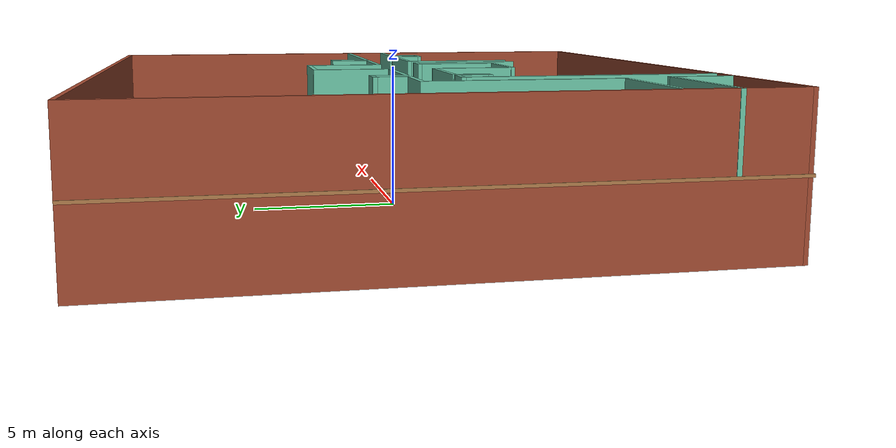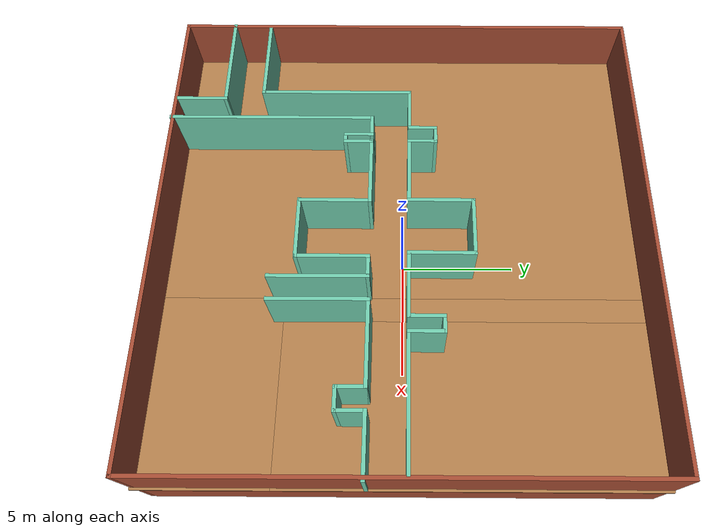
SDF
<?xml version='1.0'?>
<sdf version='1.7'>
  <model name='Test2_gazebo_map'>
    <pose>0.012465 0.035587 0 0 -0 0</pose>
    <link name='Floor_4'>
      <pose>-0 -0 2.5 0 -0 0</pose>
      <visual name='Floor_4_Visual_0'>
        <pose>-3.78854 0 0.05 0 -0 0</pose>
        <geometry>
          <box>
            <size>12.5373 20.0583 0.1</size>
          </box>
        </geometry>
        <material>
          <script>
            <uri>file://media/materials/scripts/gazebo.material</uri>
            <name>Gazebo/Wood</name>
          </script>
          <ambient>1 1 1 1</ambient>
        </material>
        <meta>
          <layer>1</layer>
        </meta>
      </visual>
      <collision name='Floor_4_Collision_0'>
        <geometry>
          <box>
            <size>12.5373 20.0583 0.1</size>
          </box>
        </geometry>
        <pose>-3.78854 0 0.05 0 -0 0</pose>
      </collision>
      <visual name='Floor_4_Visual_1'>
        <pose>6.26864 -7.44145 0.05 0 -0 0</pose>
        <geometry>
          <box>
            <size>7.57707 5.17536 0.1</size>
          </box>
        </geometry>
        <material>
          <script>
            <uri>file://media/materials/scripts/gazebo.material</uri>
            <name>Gazebo/Wood</name>
          </script>
          <ambient>1 1 1 1</ambient>
        </material>
        <meta>
          <layer>1</layer>
        </meta>
      </visual>
      <collision name='Floor_4_Collision_1'>
        <geometry>
          <box>
            <size>7.57707 5.17536 0.1</size>
          </box>
        </geometry>
        <pose>6.26864 -7.44145 0.05 0 -0 0</pose>
      </collision>
      <visual name='Floor_4_Visual_2'>
        <pose>6.76864 2.58768 0.05 0 -0 0</pose>
        <geometry>
          <box>
            <size>6.57707 14.8829 0.1</size>
          </box>
        </geometry>
        <material>
          <script>
            <uri>file://media/materials/scripts/gazebo.material</uri>
            <name>Gazebo/Wood</name>
          </script>
          <ambient>1 1 1 1</ambient>
        </material>
        <meta>
          <layer>1</layer>
        </meta>
      </visual>
      <collision name='Floor_4_Collision_2'>
        <geometry>
          <box>
            <size>6.57707 14.8829 0.1</size>
          </box>
        </geometry>
        <pose>6.76864 2.58768 0.05 0 -0 0</pose>
      </collision>
      <visual name='Floor_4_Visual_3'>
        <pose>2.98011 4.33768 0.05 0 -0 0</pose>
        <geometry>
          <box>
            <size>1 11.3829 0.1</size>
          </box>
        </geometry>
        <material>
          <script>
            <uri>file://media/materials/scripts/gazebo.material</uri>
            <name>Gazebo/Wood</name>
          </script>
          <ambient>1 1 1 1</ambient>
        </material>
        <meta>
          <layer>1</layer>
        </meta>
      </visual>
      <collision name='Floor_4_Collision_3'>
        <geometry>
          <box>
            <size>1 11.3829 0.1</size>
          </box>
        </geometry>
        <pose>2.98011 4.33768 0.05 0 -0 0</pose>
      </collision>
    </link>
    <link name='Stairs_2'>
      <visual name='Stairs_2_Visual_0'>
        <pose>2.98011 -4.7371 0.083333 0 -0 -3.14159</pose>
        <geometry>
          <box>
            <size>1 0.233333 0.166667</size>
          </box>
        </geometry>
        <material>
          <script>
            <uri>file://media/materials/scripts/gazebo.material</uri>
            <name>Gazebo/Grey</name>
          </script>
          <ambient>1 1 1 1</ambient>
        </material>
        <meta>
          <layer>0</layer>
        </meta>
      </visual>
      <collision name='Stairs_2_Collision_0'>
        <geometry>
          <box>
            <size>1 0.233333 0.166667</size>
          </box>
        </geometry>
        <pose>2.98011 -4.7371 0.083333 0 -0 -3.14159</pose>
      </collision>
      <visual name='Stairs_2_Visual_1'>
        <pose>2.98011 -4.50377 0.25 0 -0 -3.14159</pose>
        <geometry>
          <box>
            <size>1 0.233333 0.166667</size>
          </box>
        </geometry>
        <material>
          <script>
            <uri>file://media/materials/scripts/gazebo.material</uri>
            <name>Gazebo/Grey</name>
          </script>
          <ambient>1 1 1 1</ambient>
        </material>
        <meta>
          <layer>0</layer>
        </meta>
      </visual>
      <collision name='Stairs_2_Collision_1'>
        <geometry>
          <box>
            <size>1 0.233333 0.166667</size>
          </box>
        </geometry>
        <pose>2.98011 -4.50377 0.25 0 -0 -3.14159</pose>
      </collision>
      <visual name='Stairs_2_Visual_2'>
        <pose>2.98011 -4.27044 0.416667 0 -0 -3.14159</pose>
        <geometry>
          <box>
            <size>1 0.233333 0.166667</size>
          </box>
        </geometry>
        <material>
          <script>
            <uri>file://media/materials/scripts/gazebo.material</uri>
            <name>Gazebo/Grey</name>
          </script>
          <ambient>1 1 1 1</ambient>
        </material>
        <meta>
          <layer>0</layer>
        </meta>
      </visual>
      <collision name='Stairs_2_Collision_2'>
        <geometry>
          <box>
            <size>1 0.233333 0.166667</size>
          </box>
        </geometry>
        <pose>2.98011 -4.27044 0.416667 0 -0 -3.14159</pose>
      </collision>
      <visual name='Stairs_2_Visual_3'>
        <pose>2.98011 -4.0371 0.583333 0 -0 -3.14159</pose>
        <geometry>
          <box>
            <size>1 0.233333 0.166667</size>
          </box>
        </geometry>
        <material>
          <script>
            <uri>file://media/materials/scripts/gazebo.material</uri>
            <name>Gazebo/Grey</name>
          </script>
          <ambient>1 1 1 1</ambient>
        </material>
        <meta>
          <layer>0</layer>
        </meta>
      </visual>
      <collision name='Stairs_2_Collision_3'>
        <geometry>
          <box>
            <size>1 0.233333 0.166667</size>
          </box>
        </geometry>
        <pose>2.98011 -4.0371 0.583333 0 -0 -3.14159</pose>
      </collision>
      <visual name='Stairs_2_Visual_4'>
        <pose>2.98011 -3.80377 0.75 0 -0 -3.14159</pose>
        <geometry>
          <box>
            <size>1 0.233333 0.166667</size>
          </box>
        </geometry>
        <material>
          <script>
            <uri>file://media/materials/scripts/gazebo.material</uri>
            <name>Gazebo/Grey</name>
          </script>
          <ambient>1 1 1 1</ambient>
        </material>
        <meta>
          <layer>0</layer>
        </meta>
      </visual>
      <collision name='Stairs_2_Collision_4'>
        <geometry>
          <box>
            <size>1 0.233333 0.166667</size>
          </box>
        </geometry>
        <pose>2.98011 -3.80377 0.75 0 -0 -3.14159</pose>
      </collision>
      <visual name='Stairs_2_Visual_5'>
        <pose>2.98011 -3.57044 0.916667 0 -0 -3.14159</pose>
        <geometry>
          <box>
            <size>1 0.233333 0.166667</size>
          </box>
        </geometry>
        <material>
          <script>
            <uri>file://media/materials/scripts/gazebo.material</uri>
            <name>Gazebo/Grey</name>
          </script>
          <ambient>1 1 1 1</ambient>
        </material>
        <meta>
          <layer>0</layer>
        </meta>
      </visual>
      <collision name='Stairs_2_Collision_5'>
        <geometry>
          <box>
            <size>1 0.233333 0.166667</size>
          </box>
        </geometry>
        <pose>2.98011 -3.57044 0.916667 0 -0 -3.14159</pose>
      </collision>
      <visual name='Stairs_2_Visual_6'>
        <pose>2.98011 -3.3371 1.08333 0 -0 -3.14159</pose>
        <geometry>
          <box>
            <size>1 0.233333 0.166667</size>
          </box>
        </geometry>
        <material>
          <script>
            <uri>file://media/materials/scripts/gazebo.material</uri>
            <name>Gazebo/Grey</name>
          </script>
          <ambient>1 1 1 1</ambient>
        </material>
        <meta>
          <layer>0</layer>
        </meta>
      </visual>
      <collision name='Stairs_2_Collision_6'>
        <geometry>
          <box>
            <size>1 0.233333 0.166667</size>
          </box>
        </geometry>
        <pose>2.98011 -3.3371 1.08333 0 -0 -3.14159</pose>
      </collision>
      <visual name='Stairs_2_Visual_7'>
        <pose>2.98011 -3.10377 1.25 0 -0 -3.14159</pose>
        <geometry>
          <box>
            <size>1 0.233333 0.166667</size>
          </box>
        </geometry>
        <material>
          <script>
            <uri>file://media/materials/scripts/gazebo.material</uri>
            <name>Gazebo/Grey</name>
          </script>
          <ambient>1 1 1 1</ambient>
        </material>
        <meta>
          <layer>0</layer>
        </meta>
      </visual>
      <collision name='Stairs_2_Collision_7'>
        <geometry>
          <box>
            <size>1 0.233333 0.166667</size>
          </box>
        </geometry>
        <pose>2.98011 -3.10377 1.25 0 -0 -3.14159</pose>
      </collision>
      <visual name='Stairs_2_Visual_8'>
        <pose>2.98011 -2.87044 1.41667 0 -0 -3.14159</pose>
        <geometry>
          <box>
            <size>1 0.233333 0.166667</size>
          </box>
        </geometry>
        <material>
          <script>
            <uri>file://media/materials/scripts/gazebo.material</uri>
            <name>Gazebo/Grey</name>
          </script>
          <ambient>1 1 1 1</ambient>
        </material>
        <meta>
          <layer>0</layer>
        </meta>
      </visual>
      <collision name='Stairs_2_Collision_8'>
        <geometry>
          <box>
            <size>1 0.233333 0.166667</size>
          </box>
        </geometry>
        <pose>2.98011 -2.87044 1.41667 0 -0 -3.14159</pose>
      </collision>
      <visual name='Stairs_2_Visual_9'>
        <pose>2.98011 -2.6371 1.58333 0 -0 -3.14159</pose>
        <geometry>
          <box>
            <size>1 0.233333 0.166667</size>
          </box>
        </geometry>
        <material>
          <script>
            <uri>file://media/materials/scripts/gazebo.material</uri>
            <name>Gazebo/Grey</name>
          </script>
          <ambient>1 1 1 1</ambient>
        </material>
        <meta>
          <layer>0</layer>
        </meta>
      </visual>
      <collision name='Stairs_2_Collision_9'>
        <geometry>
          <box>
            <size>1 0.233333 0.166667</size>
          </box>
        </geometry>
        <pose>2.98011 -2.6371 1.58333 0 -0 -3.14159</pose>
      </collision>
      <visual name='Stairs_2_Visual_10'>
        <pose>2.98011 -2.40377 1.75 0 -0 -3.14159</pose>
        <geometry>
          <box>
            <size>1 0.233333 0.166667</size>
          </box>
        </geometry>
        <material>
          <script>
            <uri>file://media/materials/scripts/gazebo.material</uri>
            <name>Gazebo/Grey</name>
          </script>
          <ambient>1 1 1 1</ambient>
        </material>
        <meta>
          <layer>0</layer>
        </meta>
      </visual>
      <collision name='Stairs_2_Collision_10'>
        <geometry>
          <box>
            <size>1 0.233333 0.166667</size>
          </box>
        </geometry>
        <pose>2.98011 -2.40377 1.75 0 -0 -3.14159</pose>
      </collision>
      <visual name='Stairs_2_Visual_11'>
        <pose>2.98011 -2.17044 1.91667 0 -0 -3.14159</pose>
        <geometry>
          <box>
            <size>1 0.233333 0.166667</size>
          </box>
        </geometry>
        <material>
          <script>
            <uri>file://media/materials/scripts/gazebo.material</uri>
            <name>Gazebo/Grey</name>
          </script>
          <ambient>1 1 1 1</ambient>
        </material>
        <meta>
          <layer>0</layer>
        </meta>
      </visual>
      <collision name='Stairs_2_Collision_11'>
        <geometry>
          <box>
            <size>1 0.233333 0.166667</size>
          </box>
        </geometry>
        <pose>2.98011 -2.17044 1.91667 0 -0 -3.14159</pose>
      </collision>
      <visual name='Stairs_2_Visual_12'>
        <pose>2.98011 -1.9371 2.08333 0 -0 -3.14159</pose>
        <geometry>
          <box>
            <size>1 0.233333 0.166667</size>
          </box>
        </geometry>
        <material>
          <script>
            <uri>file://media/materials/scripts/gazebo.material</uri>
            <name>Gazebo/Grey</name>
          </script>
          <ambient>1 1 1 1</ambient>
        </material>
        <meta>
          <layer>0</layer>
        </meta>
      </visual>
      <collision name='Stairs_2_Collision_12'>
        <geometry>
          <box>
            <size>1 0.233333 0.166667</size>
          </box>
        </geometry>
        <pose>2.98011 -1.9371 2.08333 0 -0 -3.14159</pose>
      </collision>
      <visual name='Stairs_2_Visual_13'>
        <pose>2.98011 -1.70377 2.25 0 -0 -3.14159</pose>
        <geometry>
          <box>
            <size>1 0.233333 0.166667</size>
          </box>
        </geometry>
        <material>
          <script>
            <uri>file://media/materials/scripts/gazebo.material</uri>
            <name>Gazebo/Grey</name>
          </script>
          <ambient>1 1 1 1</ambient>
        </material>
        <meta>
          <layer>0</layer>
        </meta>
      </visual>
      <collision name='Stairs_2_Collision_13'>
        <geometry>
          <box>
            <size>1 0.233333 0.166667</size>
          </box>
        </geometry>
        <pose>2.98011 -1.70377 2.25 0 -0 -3.14159</pose>
      </collision>
      <visual name='Stairs_2_Visual_14'>
        <pose>2.98011 -1.47044 2.41667 0 -0 -3.14159</pose>
        <geometry>
          <box>
            <size>1 0.233333 0.166667</size>
          </box>
        </geometry>
        <material>
          <script>
            <uri>file://media/materials/scripts/gazebo.material</uri>
            <name>Gazebo/Grey</name>
          </script>
          <ambient>1 1 1 1</ambient>
        </material>
        <meta>
          <layer>0</layer>
        </meta>
      </visual>
      <collision name='Stairs_2_Collision_14'>
        <geometry>
          <box>
            <size>1 0.233333 0.166667</size>
          </box>
        </geometry>
        <pose>2.98011 -1.47044 2.41667 0 -0 -3.14159</pose>
      </collision>
    </link>
    <link name='Wall_135'>
      <collision name='Wall_135_Collision'>
        <geometry>
          <box>
            <size>20 0.15 2.5</size>
          </box>
        </geometry>
        <pose>0 0 1.25 0 -0 0</pose>
      </collision>
      <visual name='Wall_135_Visual'>
        <pose>0 0 1.25 0 -0 0</pose>
        <geometry>
          <box>
            <size>20 0.15 2.5</size>
          </box>
        </geometry>
        <material>
          <script>
            <uri>file://media/materials/scripts/gazebo.material</uri>
            <name>Gazebo/Bricks</name>
          </script>
          <ambient>1 1 1 1</ambient>
        </material>
        <meta>
          <layer>0</layer>
        </meta>
      </visual>
      <pose>-9.96316 0.029128 0 0 -0 1.5708</pose>
    </link>
    <link name='Wall_136'>
      <collision name='Wall_136_Collision'>
        <geometry>
          <box>
            <size>20 0.15 2.5</size>
          </box>
        </geometry>
        <pose>0 0 1.25 0 -0 0</pose>
      </collision>
      <visual name='Wall_136_Visual'>
        <pose>0 0 1.25 0 -0 0</pose>
        <geometry>
          <box>
            <size>20 0.15 2.5</size>
          </box>
        </geometry>
        <material>
          <script>
            <uri>file://media/materials/scripts/gazebo.material</uri>
            <name>Gazebo/Bricks</name>
          </script>
          <ambient>1 1 1 1</ambient>
        </material>
        <meta>
          <layer>0</layer>
        </meta>
      </visual>
      <pose>-0.038158 9.95413 0 0 -0 0</pose>
    </link>
    <link name='Wall_137'>
      <collision name='Wall_137_Collision'>
        <geometry>
          <box>
            <size>20 0.15 2.5</size>
          </box>
        </geometry>
        <pose>0 0 1.25 0 -0 0</pose>
      </collision>
      <visual name='Wall_137_Visual'>
        <pose>0 0 1.25 0 -0 0</pose>
        <geometry>
          <box>
            <size>20 0.15 2.5</size>
          </box>
        </geometry>
        <material>
          <script>
            <uri>file://media/materials/scripts/gazebo.material</uri>
            <name>Gazebo/Bricks</name>
          </script>
          <ambient>1 1 1 1</ambient>
        </material>
        <meta>
          <layer>0</layer>
        </meta>
      </visual>
      <pose>9.88684 0.029128 0 0 -0 -1.5708</pose>
    </link>
    <link name='Wall_138'>
      <collision name='Wall_138_Collision'>
        <geometry>
          <box>
            <size>20 0.15 2.5</size>
          </box>
        </geometry>
        <pose>0 0 1.25 0 -0 0</pose>
      </collision>
      <visual name='Wall_138_Visual'>
        <pose>0 0 1.25 0 -0 0</pose>
        <geometry>
          <box>
            <size>20 0.15 2.5</size>
          </box>
        </geometry>
        <material>
          <script>
            <uri>file://media/materials/scripts/gazebo.material</uri>
            <name>Gazebo/Bricks</name>
          </script>
          <ambient>1 1 1 1</ambient>
        </material>
        <meta>
          <layer>0</layer>
        </meta>
      </visual>
      <pose>-0.038158 -9.89587 0 0 -0 3.14159</pose>
    </link>
    <link name='Wall_140'>
      <collision name='Wall_140_Collision'>
        <geometry>
          <box>
            <size>20 0.15 2.5</size>
          </box>
        </geometry>
        <pose>0 0 1.25 0 -0 0</pose>
      </collision>
      <visual name='Wall_140_Visual'>
        <pose>0 0 1.25 0 -0 0</pose>
        <geometry>
          <box>
            <size>20 0.15 2.5</size>
          </box>
        </geometry>
        <material>
          <script>
            <uri>file://media/materials/scripts/gazebo.material</uri>
            <name>Gazebo/Bricks</name>
          </script>
          <ambient>1 1 1 1</ambient>
        </material>
        <meta>
          <layer>1</layer>
        </meta>
      </visual>
      <pose>-9.96316 0.029128 2.5 0 -0 1.5708</pose>
    </link>
    <link name='Wall_141'>
      <collision name='Wall_141_Collision'>
        <geometry>
          <box>
            <size>20 0.15 2.5</size>
          </box>
        </geometry>
        <pose>0 0 1.25 0 -0 0</pose>
      </collision>
      <visual name='Wall_141_Visual'>
        <pose>0 0 1.25 0 -0 0</pose>
        <geometry>
          <box>
            <size>20 0.15 2.5</size>
          </box>
        </geometry>
        <material>
          <script>
            <uri>file://media/materials/scripts/gazebo.material</uri>
            <name>Gazebo/Bricks</name>
          </script>
          <ambient>1 1 1 1</ambient>
        </material>
        <meta>
          <layer>1</layer>
        </meta>
      </visual>
      <pose>-0.038158 9.95413 2.5 0 -0 0</pose>
    </link>
    <link name='Wall_142'>
      <collision name='Wall_142_Collision'>
        <geometry>
          <box>
            <size>20 0.15 2.5</size>
          </box>
        </geometry>
        <pose>0 0 1.25 0 -0 0</pose>
      </collision>
      <visual name='Wall_142_Visual'>
        <pose>0 0 1.25 0 -0 0</pose>
        <geometry>
          <box>
            <size>20 0.15 2.5</size>
          </box>
        </geometry>
        <material>
          <script>
            <uri>file://media/materials/scripts/gazebo.material</uri>
            <name>Gazebo/Bricks</name>
          </script>
          <ambient>1 1 1 1</ambient>
        </material>
        <meta>
          <layer>1</layer>
        </meta>
      </visual>
      <pose>9.88684 0.029128 2.5 0 -0 -1.5708</pose>
    </link>
    <link name='Wall_143'>
      <collision name='Wall_143_Collision'>
        <geometry>
          <box>
            <size>20 0.15 2.5</size>
          </box>
        </geometry>
        <pose>0 0 1.25 0 -0 0</pose>
      </collision>
      <visual name='Wall_143_Visual'>
        <pose>0 0 1.25 0 -0 0</pose>
        <geometry>
          <box>
            <size>20 0.15 2.5</size>
          </box>
        </geometry>
        <material>
          <script>
            <uri>file://media/materials/scripts/gazebo.material</uri>
            <name>Gazebo/Bricks</name>
          </script>
          <ambient>1 1 1 1</ambient>
        </material>
        <meta>
          <layer>1</layer>
        </meta>
      </visual>
      <pose>-0.038158 -9.89587 2.5 0 -0 3.14159</pose>
    </link>
    <link name='Wall_146'>
      <collision name='Wall_146_Collision'>
        <geometry>
          <box>
            <size>2.25 0.15 2.5</size>
          </box>
        </geometry>
        <pose>0 0 1.25 0 -0 0</pose>
      </collision>
      <visual name='Wall_146_Visual'>
        <pose>0 0 1.25 0 -0 0</pose>
        <geometry>
          <box>
            <size>2.25 0.15 2.5</size>
          </box>
        </geometry>
        <material>
          <script>
            <uri>file://media/materials/scripts/gazebo.material</uri>
            <name>Gazebo/Grey</name>
          </script>
          <ambient>0.435294 0.796078 0.67451 1</ambient>
        </material>
        <meta>
          <layer>1</layer>
        </meta>
      </visual>
      <pose>-5.88218 -8.79334 2.5 0 -0 1.5708</pose>
    </link>
    <link name='Wall_147'>
      <collision name='Wall_147_Collision'>
        <geometry>
          <box>
            <size>4.25 0.15 2.5</size>
          </box>
        </geometry>
        <pose>0 0 1.25 0 -0 0</pose>
      </collision>
      <visual name='Wall_147_Visual'>
        <pose>0 0 1.25 0 -0 0</pose>
        <geometry>
          <box>
            <size>4.25 0.15 2.5</size>
          </box>
        </geometry>
        <material>
          <script>
            <uri>file://media/materials/scripts/gazebo.material</uri>
            <name>Gazebo/Grey</name>
          </script>
          <ambient>0.435294 0.796078 0.67451 1</ambient>
        </material>
        <meta>
          <layer>1</layer>
        </meta>
      </visual>
      <pose>-7.93218 -7.74334 2.5 0 -0 3.14159</pose>
    </link>
    <link name='Wall_149'>
      <collision name='Wall_149_Collision'>
        <geometry>
          <box>
            <size>3.75 0.15 2.5</size>
          </box>
        </geometry>
        <pose>0 0 1.25 0 -0 0</pose>
      </collision>
      <visual name='Wall_149_Visual'>
        <pose>0 0 1.25 0 -0 0</pose>
        <geometry>
          <box>
            <size>3.75 0.15 2.5</size>
          </box>
        </geometry>
        <material>
          <script>
            <uri>file://media/materials/scripts/gazebo.material</uri>
            <name>Gazebo/Grey</name>
          </script>
          <ambient>0.435294 0.796078 0.67451 1</ambient>
        </material>
        <meta>
          <layer>1</layer>
        </meta>
      </visual>
      <pose>-8.02828 -6.10849 2.5 0 -0 0</pose>
    </link>
    <link name='Wall_150'>
      <collision name='Wall_150_Collision'>
        <geometry>
          <box>
            <size>6.5 0.15 2.5</size>
          </box>
        </geometry>
        <pose>0 0 1.25 0 -0 0</pose>
      </collision>
      <visual name='Wall_150_Visual'>
        <pose>0 0 1.25 0 -0 0</pose>
        <geometry>
          <box>
            <size>6.5 0.15 2.5</size>
          </box>
        </geometry>
        <material>
          <script>
            <uri>file://media/materials/scripts/gazebo.material</uri>
            <name>Gazebo/Grey</name>
          </script>
          <ambient>0.435294 0.796078 0.67451 1</ambient>
        </material>
        <meta>
          <layer>1</layer>
        </meta>
      </visual>
      <pose>-6.22828 -2.9335 2.5 0 -0 1.5708</pose>
    </link>
    <link name='Wall_151'>
      <collision name='Wall_151_Collision'>
        <geometry>
          <box>
            <size>2 0.15 2.5</size>
          </box>
        </geometry>
        <pose>0 0 1.25 0 -0 0</pose>
      </collision>
      <visual name='Wall_151_Visual'>
        <pose>0 0 1.25 0 -0 0</pose>
        <geometry>
          <box>
            <size>2 0.15 2.5</size>
          </box>
        </geometry>
        <material>
          <script>
            <uri>file://media/materials/scripts/gazebo.material</uri>
            <name>Gazebo/Grey</name>
          </script>
          <ambient>0.435294 0.796078 0.67451 1</ambient>
        </material>
        <meta>
          <layer>1</layer>
        </meta>
      </visual>
      <pose>-5.30328 0.241505 2.5 0 -0 0</pose>
    </link>
    <link name='Wall_152'>
      <collision name='Wall_152_Collision'>
        <geometry>
          <box>
            <size>1.25 0.15 2.5</size>
          </box>
        </geometry>
        <pose>0 0 1.25 0 -0 0</pose>
      </collision>
      <visual name='Wall_152_Visual'>
        <pose>0 0 1.25 0 -0 0</pose>
        <geometry>
          <box>
            <size>1.25 0.15 2.5</size>
          </box>
        </geometry>
        <material>
          <script>
            <uri>file://media/materials/scripts/gazebo.material</uri>
            <name>Gazebo/Grey</name>
          </script>
          <ambient>0.435294 0.796078 0.67451 1</ambient>
        </material>
        <meta>
          <layer>1</layer>
        </meta>
      </visual>
      <pose>-4.37828 0.791505 2.5 0 -0 1.5708</pose>
    </link>
    <link name='Wall_153'>
      <collision name='Wall_153_Collision'>
        <geometry>
          <box>
            <size>0.816256 0.15 2.5</size>
          </box>
        </geometry>
        <pose>0 0 1.25 0 -0 0</pose>
      </collision>
      <visual name='Wall_153_Visual'>
        <pose>0 0 1.25 0 -0 0</pose>
        <geometry>
          <box>
            <size>0.816256 0.15 2.5</size>
          </box>
        </geometry>
        <material>
          <script>
            <uri>file://media/materials/scripts/gazebo.material</uri>
            <name>Gazebo/Grey</name>
          </script>
          <ambient>0.435294 0.796078 0.67451 1</ambient>
        </material>
        <meta>
          <layer>1</layer>
        </meta>
      </visual>
      <pose>-4.04521 1.3415 2.5 0 -0 0</pose>
    </link>
    <link name='Wall_154'>
      <collision name='Wall_154_Collision'>
        <geometry>
          <box>
            <size>1.25 0.15 2.5</size>
          </box>
        </geometry>
        <pose>0 0 1.25 0 -0 0</pose>
      </collision>
      <visual name='Wall_154_Visual'>
        <pose>0 0 1.25 0 -0 0</pose>
        <geometry>
          <box>
            <size>1.25 0.15 2.5</size>
          </box>
        </geometry>
        <material>
          <script>
            <uri>file://media/materials/scripts/gazebo.material</uri>
            <name>Gazebo/Grey</name>
          </script>
          <ambient>0.435294 0.796078 0.67451 1</ambient>
        </material>
        <meta>
          <layer>1</layer>
        </meta>
      </visual>
      <pose>-3.71215 0.77828 2.5 0 -0 -1.5708</pose>
    </link>
    <link name='Wall_156'>
      <collision name='Wall_156_Collision'>
        <geometry>
          <box>
            <size>3 0.15 2.5</size>
          </box>
        </geometry>
        <pose>0 0 1.25 0 -0 0</pose>
      </collision>
      <visual name='Wall_156_Visual'>
        <pose>0 0 1.25 0 -0 0</pose>
        <geometry>
          <box>
            <size>3 0.15 2.5</size>
          </box>
        </geometry>
        <material>
          <script>
            <uri>file://media/materials/scripts/gazebo.material</uri>
            <name>Gazebo/Grey</name>
          </script>
          <ambient>0.435294 0.796078 0.67451 1</ambient>
        </material>
        <meta>
          <layer>1</layer>
        </meta>
      </visual>
      <pose>-2.28715 0.22828 2.5 0 -0 3.14159</pose>
    </link>
    <link name='Wall_158'>
      <collision name='Wall_158_Collision'>
        <geometry>
          <box>
            <size>2.75 0.15 2.5</size>
          </box>
        </geometry>
        <pose>0 0 1.25 0 -0 0</pose>
      </collision>
      <visual name='Wall_158_Visual'>
        <pose>0 0 1.25 0 -0 0</pose>
        <geometry>
          <box>
            <size>2.75 0.15 2.5</size>
          </box>
        </geometry>
        <material>
          <script>
            <uri>file://media/materials/scripts/gazebo.material</uri>
            <name>Gazebo/Grey</name>
          </script>
          <ambient>0.435294 0.796078 0.67451 1</ambient>
        </material>
        <meta>
          <layer>1</layer>
        </meta>
      </visual>
      <pose>-0.86215 1.52828 2.5 0 -0 1.5708</pose>
    </link>
    <link name='Wall_159'>
      <collision name='Wall_159_Collision'>
        <geometry>
          <box>
            <size>2.5 0.15 2.5</size>
          </box>
        </geometry>
        <pose>0 0 1.25 0 -0 0</pose>
      </collision>
      <visual name='Wall_159_Visual'>
        <pose>0 0 1.25 0 -0 0</pose>
        <geometry>
          <box>
            <size>2.5 0.15 2.5</size>
          </box>
        </geometry>
        <material>
          <script>
            <uri>file://media/materials/scripts/gazebo.material</uri>
            <name>Gazebo/Grey</name>
          </script>
          <ambient>0.435294 0.796078 0.67451 1</ambient>
        </material>
        <meta>
          <layer>1</layer>
        </meta>
      </visual>
      <pose>0.31285 2.82828 2.5 0 -0 0</pose>
    </link>
    <link name='Wall_160'>
      <collision name='Wall_160_Collision'>
        <geometry>
          <box>
            <size>2.75 0.15 2.5</size>
          </box>
        </geometry>
        <pose>0 0 1.25 0 -0 0</pose>
      </collision>
      <visual name='Wall_160_Visual'>
        <pose>0 0 1.25 0 -0 0</pose>
        <geometry>
          <box>
            <size>2.75 0.15 2.5</size>
          </box>
        </geometry>
        <material>
          <script>
            <uri>file://media/materials/scripts/gazebo.material</uri>
            <name>Gazebo/Grey</name>
          </script>
          <ambient>0.435294 0.796078 0.67451 1</ambient>
        </material>
        <meta>
          <layer>1</layer>
        </meta>
      </visual>
      <pose>1.48785 1.52828 2.5 0 -0 -1.5708</pose>
    </link>
    <link name='Wall_162'>
      <collision name='Wall_162_Collision'>
        <geometry>
          <box>
            <size>2.75 0.15 2.5</size>
          </box>
        </geometry>
        <pose>0 0 1.25 0 -0 0</pose>
      </collision>
      <visual name='Wall_162_Visual'>
        <pose>0 0 1.25 0 -0 0</pose>
        <geometry>
          <box>
            <size>2.75 0.15 2.5</size>
          </box>
        </geometry>
        <material>
          <script>
            <uri>file://media/materials/scripts/gazebo.material</uri>
            <name>Gazebo/Grey</name>
          </script>
          <ambient>0.435294 0.796078 0.67451 1</ambient>
        </material>
        <meta>
          <layer>1</layer>
        </meta>
      </visual>
      <pose>2.78785 0.22828 2.5 0 -0 0</pose>
    </link>
    <link name='Wall_163'>
      <collision name='Wall_163_Collision'>
        <geometry>
          <box>
            <size>1.5 0.15 2.5</size>
          </box>
        </geometry>
        <pose>0 0 1.25 0 -0 0</pose>
      </collision>
      <visual name='Wall_163_Visual'>
        <pose>0 0 1.25 0 -0 0</pose>
        <geometry>
          <box>
            <size>1.5 0.15 2.5</size>
          </box>
        </geometry>
        <material>
          <script>
            <uri>file://media/materials/scripts/gazebo.material</uri>
            <name>Gazebo/Grey</name>
          </script>
          <ambient>0.435294 0.796078 0.67451 1</ambient>
        </material>
        <meta>
          <layer>1</layer>
        </meta>
      </visual>
      <pose>4.08785 0.90328 2.5 0 -0 1.5708</pose>
    </link>
    <link name='Wall_164'>
      <collision name='Wall_164_Collision'>
        <geometry>
          <box>
            <size>0.75 0.15 2.5</size>
          </box>
        </geometry>
        <pose>0 0 1.25 0 -0 0</pose>
      </collision>
      <visual name='Wall_164_Visual'>
        <pose>0 0 1.25 0 -0 0</pose>
        <geometry>
          <box>
            <size>0.75 0.15 2.5</size>
          </box>
        </geometry>
        <material>
          <script>
            <uri>file://media/materials/scripts/gazebo.material</uri>
            <name>Gazebo/Grey</name>
          </script>
          <ambient>0.435294 0.796078 0.67451 1</ambient>
        </material>
        <meta>
          <layer>1</layer>
        </meta>
      </visual>
      <pose>4.38785 1.57828 2.5 0 -0 0</pose>
    </link>
    <link name='Wall_165'>
      <collision name='Wall_165_Collision'>
        <geometry>
          <box>
            <size>1.5 0.15 2.5</size>
          </box>
        </geometry>
        <pose>0 0 1.25 0 -0 0</pose>
      </collision>
      <visual name='Wall_165_Visual'>
        <pose>0 0 1.25 0 -0 0</pose>
        <geometry>
          <box>
            <size>1.5 0.15 2.5</size>
          </box>
        </geometry>
        <material>
          <script>
            <uri>file://media/materials/scripts/gazebo.material</uri>
            <name>Gazebo/Grey</name>
          </script>
          <ambient>0.435294 0.796078 0.67451 1</ambient>
        </material>
        <meta>
          <layer>1</layer>
        </meta>
      </visual>
      <pose>4.68785 0.90328 2.5 0 -0 -1.5708</pose>
    </link>
    <link name='Wall_166'>
      <collision name='Wall_166_Collision'>
        <geometry>
          <box>
            <size>5.25 0.15 2.5</size>
          </box>
        </geometry>
        <pose>0 0 1.25 0 -0 0</pose>
      </collision>
      <visual name='Wall_166_Visual'>
        <pose>0 0 1.25 0 -0 0</pose>
        <geometry>
          <box>
            <size>5.25 0.15 2.5</size>
          </box>
        </geometry>
        <material>
          <script>
            <uri>file://media/materials/scripts/gazebo.material</uri>
            <name>Gazebo/Grey</name>
          </script>
          <ambient>0.435294 0.796078 0.67451 1</ambient>
        </material>
        <meta>
          <layer>1</layer>
        </meta>
      </visual>
      <pose>7.23785 0.22828 2.5 0 -0 0</pose>
    </link>
    <link name='Wall_168'>
      <collision name='Wall_168_Collision'>
        <geometry>
          <box>
            <size>2.5 0.15 2.5</size>
          </box>
        </geometry>
        <pose>0 0 1.25 0 -0 0</pose>
      </collision>
      <visual name='Wall_168_Visual'>
        <pose>0 0 1.25 0 -0 0</pose>
        <geometry>
          <box>
            <size>2.5 0.15 2.5</size>
          </box>
        </geometry>
        <material>
          <script>
            <uri>file://media/materials/scripts/gazebo.material</uri>
            <name>Gazebo/Grey</name>
          </script>
          <ambient>0.435294 0.796078 0.67451 1</ambient>
        </material>
        <meta>
          <layer>1</layer>
        </meta>
      </visual>
      <pose>8.80718 -1.30841 2.5 0 -0 3.14159</pose>
    </link>
    <link name='Wall_169'>
      <collision name='Wall_169_Collision'>
        <geometry>
          <box>
            <size>1.25 0.15 2.5</size>
          </box>
        </geometry>
        <pose>0 0 1.25 0 -0 0</pose>
      </collision>
      <visual name='Wall_169_Visual'>
        <pose>0 0 1.25 0 -0 0</pose>
        <geometry>
          <box>
            <size>1.25 0.15 2.5</size>
          </box>
        </geometry>
        <material>
          <script>
            <uri>file://media/materials/scripts/gazebo.material</uri>
            <name>Gazebo/Grey</name>
          </script>
          <ambient>0.435294 0.796078 0.67451 1</ambient>
        </material>
        <meta>
          <layer>1</layer>
        </meta>
      </visual>
      <pose>7.63218 -1.85841 2.5 0 -0 -1.5708</pose>
    </link>
    <link name='Wall_170'>
      <collision name='Wall_170_Collision'>
        <geometry>
          <box>
            <size>1 0.15 2.5</size>
          </box>
        </geometry>
        <pose>0 0 1.25 0 -0 0</pose>
      </collision>
      <visual name='Wall_170_Visual'>
        <pose>0 0 1.25 0 -0 0</pose>
        <geometry>
          <box>
            <size>1 0.15 2.5</size>
          </box>
        </geometry>
        <material>
          <script>
            <uri>file://media/materials/scripts/gazebo.material</uri>
            <name>Gazebo/Grey</name>
          </script>
          <ambient>0.435294 0.796078 0.67451 1</ambient>
        </material>
        <meta>
          <layer>1</layer>
        </meta>
      </visual>
      <pose>7.20718 -2.40841 2.5 0 -0 3.14159</pose>
    </link>
    <link name='Wall_171'>
      <collision name='Wall_171_Collision'>
        <geometry>
          <box>
            <size>1.25 0.15 2.5</size>
          </box>
        </geometry>
        <pose>0 0 1.25 0 -0 0</pose>
      </collision>
      <visual name='Wall_171_Visual'>
        <pose>0 0 1.25 0 -0 0</pose>
        <geometry>
          <box>
            <size>1.25 0.15 2.5</size>
          </box>
        </geometry>
        <material>
          <script>
            <uri>file://media/materials/scripts/gazebo.material</uri>
            <name>Gazebo/Grey</name>
          </script>
          <ambient>0.435294 0.796078 0.67451 1</ambient>
        </material>
        <meta>
          <layer>1</layer>
        </meta>
      </visual>
      <pose>6.78218 -1.85841 2.5 0 -0 1.5708</pose>
    </link>
    <link name='Wall_172'>
      <collision name='Wall_172_Collision'>
        <geometry>
          <box>
            <size>3.5 0.15 2.5</size>
          </box>
        </geometry>
        <pose>0 0 1.25 0 -0 0</pose>
      </collision>
      <visual name='Wall_172_Visual'>
        <pose>0 0 1.25 0 -0 0</pose>
        <geometry>
          <box>
            <size>3.5 0.15 2.5</size>
          </box>
        </geometry>
        <material>
          <script>
            <uri>file://media/materials/scripts/gazebo.material</uri>
            <name>Gazebo/Grey</name>
          </script>
          <ambient>0.435294 0.796078 0.67451 1</ambient>
        </material>
        <meta>
          <layer>1</layer>
        </meta>
      </visual>
      <pose>5.10718 -1.30841 2.5 0 -0 3.14159</pose>
    </link>
    <link name='Wall_173'>
      <collision name='Wall_173_Collision'>
        <geometry>
          <box>
            <size>4 0.15 2.5</size>
          </box>
        </geometry>
        <pose>0 0 1.25 0 -0 0</pose>
      </collision>
      <visual name='Wall_173_Visual'>
        <pose>0 0 1.25 0 -0 0</pose>
        <geometry>
          <box>
            <size>4 0.15 2.5</size>
          </box>
        </geometry>
        <material>
          <script>
            <uri>file://media/materials/scripts/gazebo.material</uri>
            <name>Gazebo/Grey</name>
          </script>
          <ambient>0.435294 0.796078 0.67451 1</ambient>
        </material>
        <meta>
          <layer>1</layer>
        </meta>
      </visual>
      <pose>3.43218 -3.23341 2.5 0 -0 -1.5708</pose>
    </link>
    <link name='Wall_175'>
      <collision name='Wall_175_Collision'>
        <geometry>
          <box>
            <size>4 0.15 2.5</size>
          </box>
        </geometry>
        <pose>0 0 1.25 0 -0 0</pose>
      </collision>
      <visual name='Wall_175_Visual'>
        <pose>0 0 1.25 0 -0 0</pose>
        <geometry>
          <box>
            <size>4 0.15 2.5</size>
          </box>
        </geometry>
        <material>
          <script>
            <uri>file://media/materials/scripts/gazebo.material</uri>
            <name>Gazebo/Grey</name>
          </script>
          <ambient>0.435294 0.796078 0.67451 1</ambient>
        </material>
        <meta>
          <layer>1</layer>
        </meta>
      </visual>
      <pose>2.49183 -3.27913 2.5 0 -0 1.5708</pose>
    </link>
    <link name='Wall_176'>
      <collision name='Wall_176_Collision'>
        <geometry>
          <box>
            <size>1 0.15 2.5</size>
          </box>
        </geometry>
        <pose>0 0 1.25 0 -0 0</pose>
      </collision>
      <visual name='Wall_176_Visual'>
        <pose>0 0 1.25 0 -0 0</pose>
        <geometry>
          <box>
            <size>1 0.15 2.5</size>
          </box>
        </geometry>
        <material>
          <script>
            <uri>file://media/materials/scripts/gazebo.material</uri>
            <name>Gazebo/Grey</name>
          </script>
          <ambient>0.435294 0.796078 0.67451 1</ambient>
        </material>
        <meta>
          <layer>1</layer>
        </meta>
      </visual>
      <pose>2.06683 -1.35413 2.5 0 -0 3.14159</pose>
    </link>
    <link name='Wall_178'>
      <collision name='Wall_178_Collision'>
        <geometry>
          <box>
            <size>3 0.15 2.5</size>
          </box>
        </geometry>
        <pose>0 0 1.25 0 -0 0</pose>
      </collision>
      <visual name='Wall_178_Visual'>
        <pose>0 0 1.25 0 -0 0</pose>
        <geometry>
          <box>
            <size>3 0.15 2.5</size>
          </box>
        </geometry>
        <material>
          <script>
            <uri>file://media/materials/scripts/gazebo.material</uri>
            <name>Gazebo/Grey</name>
          </script>
          <ambient>0.435294 0.796078 0.67451 1</ambient>
        </material>
        <meta>
          <layer>1</layer>
        </meta>
      </visual>
      <pose>1.64183 -2.77913 2.5 0 -0 -1.5708</pose>
    </link>
    <link name='Wall_179'>
      <collision name='Wall_179_Collision'>
        <geometry>
          <box>
            <size>2.64373 0.15 2.5</size>
          </box>
        </geometry>
        <pose>0 0 1.25 0 -0 0</pose>
      </collision>
      <visual name='Wall_179_Visual'>
        <pose>0 0 1.25 0 -0 0</pose>
        <geometry>
          <box>
            <size>2.64373 0.15 2.5</size>
          </box>
        </geometry>
        <material>
          <script>
            <uri>file://media/materials/scripts/gazebo.material</uri>
            <name>Gazebo/Grey</name>
          </script>
          <ambient>0.435294 0.796078 0.67451 1</ambient>
        </material>
        <meta>
          <layer>1</layer>
        </meta>
      </visual>
      <pose>0.394967 -4.20413 2.5 0 -0 3.14159</pose>
    </link>
    <link name='Wall_180'>
      <collision name='Wall_180_Collision'>
        <geometry>
          <box>
            <size>3 0.15 2.5</size>
          </box>
        </geometry>
        <pose>0 0 1.25 0 -0 0</pose>
      </collision>
      <visual name='Wall_180_Visual'>
        <pose>0 0 1.25 0 -0 0</pose>
        <geometry>
          <box>
            <size>3 0.15 2.5</size>
          </box>
        </geometry>
        <material>
          <script>
            <uri>file://media/materials/scripts/gazebo.material</uri>
            <name>Gazebo/Grey</name>
          </script>
          <ambient>0.435294 0.796078 0.67451 1</ambient>
        </material>
        <meta>
          <layer>1</layer>
        </meta>
      </visual>
      <pose>-0.838671 -2.77913 2.5 0 -0 1.5708</pose>
    </link>
    <link name='Wall_182'>
      <collision name='Wall_182_Collision'>
        <geometry>
          <box>
            <size>3 0.15 2.5</size>
          </box>
        </geometry>
        <pose>0 0 1.25 0 -0 0</pose>
      </collision>
      <visual name='Wall_182_Visual'>
        <pose>0 0 1.25 0 -0 0</pose>
        <geometry>
          <box>
            <size>3 0.15 2.5</size>
          </box>
        </geometry>
        <material>
          <script>
            <uri>file://media/materials/scripts/gazebo.material</uri>
            <name>Gazebo/Grey</name>
          </script>
          <ambient>0.435294 0.796078 0.67451 1</ambient>
        </material>
        <meta>
          <layer>1</layer>
        </meta>
      </visual>
      <pose>-2.26367 -1.35413 2.5 0 -0 3.14159</pose>
    </link>
    <link name='Wall_184'>
      <collision name='Wall_184_Collision'>
        <geometry>
          <box>
            <size>1.25 0.15 2.5</size>
          </box>
        </geometry>
        <pose>0 0 1.25 0 -0 0</pose>
      </collision>
      <visual name='Wall_184_Visual'>
        <pose>0 0 1.25 0 -0 0</pose>
        <geometry>
          <box>
            <size>1.25 0.15 2.5</size>
          </box>
        </geometry>
        <material>
          <script>
            <uri>file://media/materials/scripts/gazebo.material</uri>
            <name>Gazebo/Grey</name>
          </script>
          <ambient>0.435294 0.796078 0.67451 1</ambient>
        </material>
        <meta>
          <layer>1</layer>
        </meta>
      </visual>
      <pose>-3.68867 -1.90413 2.5 0 -0 -1.5708</pose>
    </link>
    <link name='Wall_185'>
      <collision name='Wall_185_Collision'>
        <geometry>
          <box>
            <size>0.5 0.15 2.5</size>
          </box>
        </geometry>
        <pose>0 0 1.25 0 -0 0</pose>
      </collision>
      <visual name='Wall_185_Visual'>
        <pose>0 0 1.25 0 -0 0</pose>
        <geometry>
          <box>
            <size>0.5 0.15 2.5</size>
          </box>
        </geometry>
        <material>
          <script>
            <uri>file://media/materials/scripts/gazebo.material</uri>
            <name>Gazebo/Grey</name>
          </script>
          <ambient>0.435294 0.796078 0.67451 1</ambient>
        </material>
        <meta>
          <layer>1</layer>
        </meta>
      </visual>
      <pose>-3.86367 -2.45413 2.5 0 -0 3.14159</pose>
    </link>
    <link name='Wall_186'>
      <collision name='Wall_186_Collision'>
        <geometry>
          <box>
            <size>1.25 0.15 2.5</size>
          </box>
        </geometry>
        <pose>0 0 1.25 0 -0 0</pose>
      </collision>
      <visual name='Wall_186_Visual'>
        <pose>0 0 1.25 0 -0 0</pose>
        <geometry>
          <box>
            <size>1.25 0.15 2.5</size>
          </box>
        </geometry>
        <material>
          <script>
            <uri>file://media/materials/scripts/gazebo.material</uri>
            <name>Gazebo/Grey</name>
          </script>
          <ambient>0.435294 0.796078 0.67451 1</ambient>
        </material>
        <meta>
          <layer>1</layer>
        </meta>
      </visual>
      <pose>-4.03867 -1.90413 2.5 0 -0 1.5708</pose>
    </link>
    <link name='Wall_187'>
      <collision name='Wall_187_Collision'>
        <geometry>
          <box>
            <size>1 0.15 2.5</size>
          </box>
        </geometry>
        <pose>0 0 1.25 0 -0 0</pose>
      </collision>
      <visual name='Wall_187_Visual'>
        <pose>0 0 1.25 0 -0 0</pose>
        <geometry>
          <box>
            <size>1 0.15 2.5</size>
          </box>
        </geometry>
        <material>
          <script>
            <uri>file://media/materials/scripts/gazebo.material</uri>
            <name>Gazebo/Grey</name>
          </script>
          <ambient>0.435294 0.796078 0.67451 1</ambient>
        </material>
        <meta>
          <layer>1</layer>
        </meta>
      </visual>
      <pose>-4.46367 -1.35413 2.5 0 -0 3.14159</pose>
    </link>
    <link name='Wall_188'>
      <collision name='Wall_188_Collision'>
        <geometry>
          <box>
            <size>8.75 0.15 2.5</size>
          </box>
        </geometry>
        <pose>0 0 1.25 0 -0 0</pose>
      </collision>
      <visual name='Wall_188_Visual'>
        <pose>0 0 1.25 0 -0 0</pose>
        <geometry>
          <box>
            <size>8.75 0.15 2.5</size>
          </box>
        </geometry>
        <material>
          <script>
            <uri>file://media/materials/scripts/gazebo.material</uri>
            <name>Gazebo/Grey</name>
          </script>
          <ambient>0.435294 0.796078 0.67451 1</ambient>
        </material>
        <meta>
          <layer>1</layer>
        </meta>
      </visual>
      <pose>-4.88867 -5.65413 2.5 0 -0 -1.5708</pose>
    </link>
    <static>1</static>
  </model>
</sdf>
